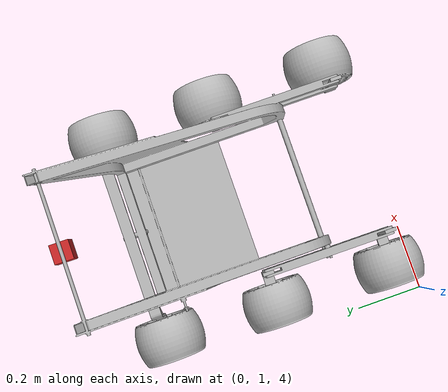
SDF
<?xml version='1.0'?>
<sdf version='1.4'>
  <model name="rmc_robot">
  <static>false</static>
  <pose>0.5 1 4 0 0 3.14</pose>
  <link name='base_link'>
      <pose>0 0 0 0 0 0</pose>
      <inertial>
        <pose>0.0718949 -0.601542 0.318448 0 -0 0</pose>
        <mass>2.92938</mass>
        <inertia>
          <ixx>0.148284</ixx>
          <ixy>7.06981e-05</ixy>
          <ixz>-1.16351e-05</ixz>
          <iyy>0.131066</iyy>
          <iyz>-0.0298493</iyz>
          <izz>0.188823</izz>
        </inertia>
      </inertial>
      <collision name='base_link_collision'>
        <pose>0 0 0 0 -0 0</pose>
        <geometry>
          <mesh>
            <scale>1 1 1</scale>
            <uri>model://rmc_simulation/meshes/base_link.STL</uri>
          </mesh>
        </geometry>
      </collision>
      <visual name='base_link_visual'>
        <pose>0 0 0 0 -0 0</pose>
        <geometry>
          <mesh>
            <scale>1 1 1</scale>
            <uri>model://rmc_simulation/meshes/base_link.STL</uri>
          </mesh>
        </geometry>
      </visual>
      <velocity_decay>
        <linear>0</linear>
        <angular>0</angular>
      </velocity_decay>
    </link>

    <link name='left_bot_link'>
      <pose>-0.140869 -0.255808 0.217656 1.5708 -0 0</pose>
      <inertial>
        <pose>-0.0111125 -2.77556e-17 0 0 -0 0</pose>
        <mass>0.188515</mass>
        <inertia>
          <ixx>0.0019175</ixx>
          <ixy>4.77528e-22</ixy>
          <ixz>1.41435e-20</ixz>
          <iyy>0.00191594</iyy>
          <iyz>4.20247e-21</iyz>
          <izz>1.85554e-05</izz>
        </inertia>
      </inertial>
      <collision name='left_bot_link_collision'>
        <pose>0 0 0 0 -0 0</pose>
        <geometry>
          <mesh>
            <scale>1 1 1</scale>
            <uri>model://rmc_simulation/meshes/left_bot_link.STL</uri>
          </mesh>
        </geometry>
      </collision>
      <visual name='left_bot_link_visual'>
        <pose>0 0 0 0 -0 0</pose>
        <geometry>
          <mesh>
            <scale>1 1 1</scale>
            <uri>model://rmc_simulation/meshes/left_bot_link.STL</uri>
          </mesh>
        </geometry>
      </visual>
      <velocity_decay>
        <linear>0</linear>
        <angular>0</angular>
      </velocity_decay>
    </link>

    <joint name='left_bot_joint' type='revolute'>
      <child>left_bot_link</child>
      <parent>base_link</parent>
      <axis>
        <xyz>-1 0 0</xyz>
        <limit>
          <lower>-1e+16</lower>
          <upper>1e+16</upper>
        </limit>
      </axis>
    </joint>

    <link name='left_bot_back_link'>
      <pose>-0.163094 -0.433608 0.217656 1.5708 -3.44169e-15 1.5708</pose>
      <inertial>
        <pose>1.92853e-05 -0.0863283 -0.0548204 0 -0 0</pose>
        <mass>0.205852</mass>
        <inertia>
          <ixx>0.00120413</ixx>
          <ixy>-1.40154e-07</ixy>
          <ixz>-1.2706e-07</ixz>
          <iyy>0.000482538</iyy>
          <iyz>0.000461297</iyz>
          <izz>0.000755248</izz>
        </inertia>
      </inertial>
      <collision name='left_bot_back_link_collision'>
        <pose>0 0 0 0 -0 0</pose>
        <geometry>
          <mesh>
            <scale>1 1 1</scale>
            <uri>model://rmc_simulation/meshes/left_bot_back_link.STL</uri>
          </mesh>
        </geometry>
      </collision>
      <visual name='left_bot_back_link_visual'>
        <pose>0 0 0 0 -0 0</pose>
        <geometry>
          <mesh>
            <scale>1 1 1</scale>
            <uri>model://rmc_simulation/meshes/left_bot_back_link.STL</uri>
          </mesh>
        </geometry>
      </visual>
      <velocity_decay>
        <linear>0</linear>
        <angular>0</angular>
      </velocity_decay>
    </link>

    <joint name='left_bot_back_joint' type='revolute'>
      <child>left_bot_back_link</child>
      <parent>left_bot_link</parent>
      <axis>
        <xyz>-1 -3.44169e-15 1.11022e-16</xyz>
        <limit>
          <lower>-1e+16</lower>
          <upper>1e+16</upper>
        </limit>
      </axis>
    </joint>

<link name='left_mid_wheel_link'>
      <pose>-0.179282 -0.433574 0.077831 0.785403 1.57079 -0.785403</pose>
      <inertial>
        <pose>-7.307e-12 -0.0707952 -1.95886e-07 0 -0 0</pose>
        <mass>0.687646</mass>
        <inertia>
          <ixx>0.00410397</ixx>
          <ixy>1.97154e-13</ixy>
          <ixz>1.06916e-14</ixz>
          <iyy>0.00552463</iyy>
          <iyz>5.39169e-09</iyz>
          <izz>0.00410397</izz>
        </inertia>
      </inertial>
      <collision name='left_mid_wheel_link_collision'>
        <pose>0 0 0 0 -0 0</pose>
        <geometry>
          <mesh>
            <scale>1 1 1</scale>
            <uri>model://rmc_simulation/meshes/left_mid_wheel_link.STL</uri>
          </mesh>
        </geometry>
      </collision>
      <visual name='left_mid_wheel_link_visual'>
        <pose>0 0 0 0 -0 0</pose>
        <geometry>
          <mesh>
            <scale>1 1 1</scale>
            <uri>model://rmc_simulation/meshes/left_mid_wheel_link.STL</uri>
          </mesh>
        </geometry>
      </visual>
      <velocity_decay>
        <linear>0</linear>
        <angular>0</angular>
      </velocity_decay>
    </link>
    <joint name='left_mid_wheel_joint' type='revolute'>
      <child>left_mid_wheel_link</child>
      <parent>left_bot_back_link</parent>
      <axis>
        <xyz>-1 -1.11022e-16 1.11022e-16</xyz>
        <limit>
          <lower>-1e+16</lower>
          <upper>1e+16</upper>
        </limit>
      </axis>
    </joint>

    <link name='left_bot_front_link'>
      <pose>-0.147219 -0.0780078 0.217656 1.5708 -3.44169e-15 1.5708</pose>
      <inertial>
        <pose>1.92853e-05 -0.0863283 -0.0706954 0 -0 0</pose>
        <mass>0.205852</mass>
        <inertia>
          <ixx>0.00120413</ixx>
          <ixy>-1.40154e-07</ixy>
          <ixz>-1.2706e-07</ixz>
          <iyy>0.000482538</iyy>
          <iyz>0.000461297</iyz>
          <izz>0.000755248</izz>
        </inertia>
      </inertial>
      <collision name='left_bot_front_link_collision'>
        <pose>0 0 0 0 -0 0</pose>
        <geometry>
          <mesh>
            <scale>1 1 1</scale>
            <uri>model://rmc_simulation/meshes/left_bot_front_link.STL</uri>
          </mesh>
        </geometry>
      </collision>
      <visual name='left_bot_front_link_visual'>
        <pose>0 0 0 0 -0 0</pose>
        <geometry>
          <mesh>
            <scale>1 1 1</scale>
            <uri>model://rmc_simulation/meshes/left_bot_front_link.STL</uri>
          </mesh>
        </geometry>
      </visual>
      <velocity_decay>
        <linear>0</linear>
        <angular>0</angular>
      </velocity_decay>
    </link>
    <joint name='left_bot_front_joiny' type='revolute'>
      <child>left_bot_front_link</child>
      <parent>left_bot_link</parent>
      <axis>
        <xyz>-1 -3.44169e-15 1.11022e-16</xyz>
        <limit>
          <lower>-1e+16</lower>
          <upper>1e+16</upper>
        </limit>
      </axis>
    </joint>

    <link name='left_front_wheel_link'>
      <pose>-0.179282 -0.077974 0.077831 0.785403 1.57079 -0.785403</pose>
      <inertial>
        <pose>-7.30697e-12 -0.0707952 -1.95886e-07 0 -0 0</pose>
        <mass>0.687646</mass>
        <inertia>
          <ixx>0.00410397</ixx>
          <ixy>1.97154e-13</ixy>
          <ixz>1.06921e-14</ixz>
          <iyy>0.00552463</iyy>
          <iyz>5.39169e-09</iyz>
          <izz>0.00410397</izz>
        </inertia>
      </inertial>
      <collision name='left_front_wheel_link_collision'>
        <pose>0 0 0 0 -0 0</pose>
        <geometry>
          <mesh>
            <scale>1 1 1</scale>
            <uri>model://rmc_simulation/meshes/left_front_wheel_link.STL</uri>
          </mesh>
        </geometry>
      </collision>
      <visual name='left_front_wheel_link_visual'>
        <pose>0 0 0 0 -0 0</pose>
        <geometry>
          <mesh>
            <scale>1 1 1</scale>
            <uri>model://rmc_simulation/meshes/left_front_wheel_link.STL</uri>
          </mesh>
        </geometry>
      </visual>
      <velocity_decay>
        <linear>0</linear>
        <angular>0</angular>
      </velocity_decay>
    </link>
    <joint name='left_front_wheel_joint' type='revolute'>
      <child>left_front_wheel_link</child>
      <parent>left_bot_front_link</parent>
      <axis>
        <xyz>-1 -1.11022e-16 1.11022e-16</xyz>
        <limit>
          <lower>-1e+16</lower>
          <upper>1e+16</upper>
        </limit>
      </axis>
    </joint>

    <link name='left_top_link'>
      <pose>-0.140869 -0.255808 0.293856 1.5708 -0 0</pose>
      <inertial>
        <pose>-0.0111125 -5.55112e-17 0 0 -0 0</pose>
        <mass>0.140249</mass>
        <inertia>
          <ixx>0.00137938</ixx>
          <ixy>-1.28023e-22</ixy>
          <ixz>7.25851e-21</ixz>
          <iyy>0.00138148</iyy>
          <iyz>4.32209e-22</iyz>
          <izz>1.05254e-05</izz>
        </inertia>
      </inertial>
      <collision name='left_top_link_collision'>
        <pose>0 0 0 0 -0 0</pose>
        <geometry>
          <mesh>
            <scale>1 1 1</scale>
            <uri>model://rmc_simulation/meshes/left_top_link.STL</uri>
          </mesh>
        </geometry>
      </collision>
      <visual name='left_top_link_visual'>
        <pose>0 0 0 0 -0 0</pose>
        <geometry>
          <mesh>
            <scale>1 1 1</scale>
            <uri>model://rmc_simulation/meshes/left_top_link.STL</uri>
          </mesh>
        </geometry>
      </visual>
      <velocity_decay>
        <linear>0</linear>
        <angular>0</angular>
      </velocity_decay>
    </link>
    <joint name='left_top_joint' type='revolute'>
      <child>left_top_link</child>
      <parent>base_link</parent>
      <axis>
        <xyz>-1 0 0</xyz>
        <limit>
          <lower>-1e+16</lower>
          <upper>1e+16</upper>
        </limit>
      </axis>
    </joint>

    <joint name='left_top_back_joint' type='revolute'>
       <child>left_bot_back_link</child>
       <parent>left_top_link</parent>
       <pose>0 0.0762 0 0 0 0</pose>
       <axis>
         <xyz>-1 0 0</xyz>
         <limit>
           <lower>-1e+16</lower>
           <upper>1e+16</upper>
         </limit>
       </axis>
    </joint>

    <joint name='left_top_front_joint' type='revolute'>
       <child>left_bot_front_link</child>
       <parent>left_top_link</parent>
       <pose> 0 0.0762 0 0 0 0 </pose>
       <axis>
         <xyz>-1 0 0</xyz>
         <limit>
           <lower>-1e+16</lower>
           <upper>1e+16</upper>
         </limit>
       </axis>
    </joint>

<!-- END OF LEFT ROCKER OMFG YESSSSSSSS -->

    <link name='rear_rocker_link'>
      <pose>0.0718557 -0.753477 0.217656 1.5708 0.0049569 4.33686e-19</pose>
      <inertial>
        <pose>0.000471477 -0.0411046 0.0167425 0 -0 0</pose>
        <mass>0.807447</mass>
        <inertia>
          <ixx>0.00288386</ixx>
          <ixy>-1.8321e-05</ixy>
          <ixz>-8.95563e-08</ixz>
          <iyy>0.0397756</iyy>
          <iyz>3.03268e-06</iyz>
          <izz>0.0425282</izz>
        </inertia>
      </inertial>
      <collision name='rear_rocker_link_collision'>
        <pose>0 0 0 0 -0 0</pose>
        <geometry>
          <mesh>
            <scale>1 1 1</scale>
            <uri>model://rmc_simulation/meshes/rear_rocker_link.STL</uri>
          </mesh>
        </geometry>
      </collision>
      <visual name='rear_rocker_link_visual'>
        <pose>0 0 0 0 -0 0</pose>
        <geometry>
          <mesh>
            <scale>1 1 1</scale>
            <uri>model://rmc_simulation/meshes/rear_rocker_link.STL</uri>
          </mesh>
        </geometry>
      </visual>
      <velocity_decay>
        <linear>0</linear>
        <angular>0</angular>
      </velocity_decay>
    </link>
    <joint name='rear_rocker_joint' type='revolute'>
      <child>rear_rocker_link</child>
      <parent>base_link</parent>
      <axis>
        <xyz>1.73472e-17 1 3.44167e-15</xyz>
        <limit>
          <lower>-1e+16</lower>
          <upper>1e+16</upper>
        </limit>
      </axis>
    </joint>
<!-- END OF REAR ROCKER -->

    <link name='left_back_wheel_link'>
      <pose>-0.180876 -0.770124 0.0791455 -1.5708 1.56584 3.14159</pose>
      <inertial>
        <pose>-7.71942e-12 -0.070792 -1.95887e-07 0 -0 0</pose>
        <mass>0.687646</mass>
        <inertia>
          <ixx>0.00410397</ixx>
          <ixy>2.09611e-13</ixy>
          <ixz>1.05878e-14</ixz>
          <iyy>0.00552463</iyy>
          <iyz>5.39171e-09</iyz>
          <izz>0.00410397</izz>
        </inertia>
      </inertial>
      <collision name='left_back_wheel_link_collision'>
        <pose>0 0 0 0 -0 0</pose>
        <geometry>
          <mesh>
            <scale>1 1 1</scale>
            <uri>model://rmc_simulation/meshes/left_back_wheel_link.STL</uri>
          </mesh>
        </geometry>
      </collision>
      <visual name='left_back_wheel_link_visual'>
        <pose>0 0 0 0 -0 0</pose>
        <geometry>
          <mesh>
            <scale>1 1 1</scale>
            <uri>model://rmc_simulation/meshes/left_back_wheel_link.STL</uri>
          </mesh>
        </geometry>
      </visual>
      <velocity_decay>
        <linear>0</linear>
        <angular>0</angular>
      </velocity_decay>
    </link>
    <joint name='left_back_wheel_joint' type='revolute'>
      <child>left_back_wheel_link</child>
      <parent>rear_rocker_link</parent>
      <axis>
        <xyz>-0.999988 -1.11022e-16 0.00495688</xyz>
        <limit>
          <lower>-1e+16</lower>
          <upper>1e+16</upper>
        </limit>
      </axis>
    </joint>

    <link name='right_back_wheel_link'>
      <pose>0.323202 -0.770124 0.0766469 3.13028 -1.11702 -1.56063</pose>
      <inertial>
        <pose>-2.56872e-12 -0.070792 -1.95886e-07 0 -0 0</pose>
        <mass>0.687646</mass>
        <inertia>
          <ixx>0.00410397</ixx>
          <ixy>7.41436e-14</ixy>
          <ixz>7.32563e-15</ixz>
          <iyy>0.00552463</iyy>
          <iyz>5.3917e-09</iyz>
          <izz>0.00410397</izz>
        </inertia>
      </inertial>
      <collision name='right_back_wheel_link_collision'>
        <pose>0 0 0 0 -0 0</pose>
        <geometry>
          <mesh>
            <scale>1 1 1</scale>
            <uri>model://rmc_simulation/meshes/right_back_wheel_link.STL</uri>
          </mesh>
        </geometry>
      </collision>
      <visual name='right_back_wheel_link_visual'>
        <pose>0 0 0 0 -0 0</pose>
        <geometry>
          <mesh>
            <scale>1 1 1</scale>
            <uri>model://rmc_simulation/meshes/right_back_wheel_link.STL</uri>
          </mesh>
        </geometry>
      </visual>
      <velocity_decay>
        <linear>0</linear>
        <angular>0</angular>
      </velocity_decay>
    </link>
    <joint name='right_back_wheel_joint' type='revolute'>
      <child>right_back_wheel_link</child>
      <parent>rear_rocker_link</parent>
      <axis>
        <xyz>-0.999988 -2.77556e-17 0.00495688</xyz>
        <limit>
          <lower>-1e+16</lower>
          <upper>1e+16</upper>
        </limit>
      </axis>
    </joint>

    <link name='right_bot_link'>
      <pose>0.284581 -0.255808 0.217656 1.5708 -0 0</pose>
      <inertial>
        <pose>0.0111125 2.77556e-17 0 0 -0 0</pose>
        <mass>0.188515</mass>
        <inertia>
          <ixx>0.0019175</ixx>
          <ixy>-7.07169e-22</ixy>
          <ixz>-9.82756e-21</ixz>
          <iyy>0.00191594</iyy>
          <iyz>-2.59046e-07</iyz>
          <izz>1.85554e-05</izz>
        </inertia>
      </inertial>
      <collision name='right_bot_link_collision'>
        <pose>0 0 0 0 -0 0</pose>
        <geometry>
          <mesh>
            <scale>1 1 1</scale>
            <uri>model://rmc_simulation/meshes/right_bot_link.STL</uri>
          </mesh>
        </geometry>
      </collision>
      <visual name='right_bot_link_visual'>
        <pose>0 0 0 0 -0 0</pose>
        <geometry>
          <mesh>
            <scale>1 1 1</scale>
            <uri>model://rmc_simulation/meshes/right_bot_link.STL</uri>
          </mesh>
        </geometry>
      </visual>
      <velocity_decay>
        <linear>0</linear>
        <angular>0</angular>
      </velocity_decay>
    </link>
    <joint name='right_bot_joint' type='revolute'>
      <child>right_bot_link</child>
      <parent>base_link</parent>
      <axis>
        <xyz>-1 0 0</xyz>
        <limit>
          <lower>-1e+16</lower>
          <upper>1e+16</upper>
        </limit>
      </axis>
    </joint>
<!-- negate the roll value. swithc the angle. check right mid wheel -->
    <link name='right_bot_back_link'>
      <pose>0.290931 -0.433608 0.207632 -1.5708 3.44169e-15 -1.5708</pose>
      <inertial>
        <pose>1.92853e-05 0.0763283 0.0706954 0 -0 0</pose>
        <mass>0.205852</mass>
        <inertia>
          <ixx>0.00120413</ixx>
          <ixy>1.40154e-07</ixy>
          <ixz>1.2706e-07</ixz>
          <iyy>0.000482538</iyy>
          <iyz>0.000461297</iyz>
          <izz>0.000755248</izz>
        </inertia>
      </inertial>
      <collision name='right_bot_back_link_collision'>
        <pose>0 0 0 0 -0 0</pose>
        <geometry>
          <mesh>
            <scale>1 1 1</scale>
            <uri>model://rmc_simulation/meshes/right_bot_back_link.STL</uri>
          </mesh>
        </geometry>
      </collision>
      <visual name='right_bot_back_link_visual'>
        <pose>0 0 0 0 -0 0</pose>
        <geometry>
          <mesh>
            <scale>1 1 1</scale>
            <uri>model://rmc_simulation/meshes/right_bot_back_link.STL</uri>
          </mesh>
        </geometry>
      </visual>
      <velocity_decay>
        <linear>0</linear>
        <angular>0</angular>
      </velocity_decay>
    </link>
    <joint name='right_bot_back_joint' type='revolute'>
      <child>right_bot_back_link</child>
      <parent>right_bot_link</parent>
      <axis>
        <xyz>-1 -3.44169e-15 1.11022e-16</xyz>
        <limit>
          <lower>-1e+16</lower>
          <upper>1e+16</upper>
        </limit>
      </axis>
    </joint>

    <link name='right_mid_wheel_link'>
      <pose>0.323202 -0.433642 0.0766469 -2.65358e-06 1.57079 1.57079</pose>
      <inertial>
        <pose>-7.30706e-12 -0.0807952 -1.95886e-07 0 -0 0</pose>
        <mass>0.687646</mass>
        <inertia>
          <ixx>0.00410397</ixx>
          <ixy>1.97149e-13</ixy>
          <ixz>1.06927e-14</ixz>
          <iyy>0.00552463</iyy>
          <iyz>5.39169e-09</iyz>
          <izz>0.00410397</izz>
        </inertia>
      </inertial>
      <collision name='right_mid_wheel_link_collision'>
        <pose>0 0 0 0 -0 0</pose>
        <geometry>
          <mesh>
            <scale>1 1 1</scale>
            <uri>model://rmc_simulation/meshes/right_mid_wheel_link.STL</uri>
          </mesh>
        </geometry>
      </collision>
      <visual name='right_mid_wheel_link_visual'>
        <pose>0 0 0 0 -0 0</pose>
        <geometry>
          <mesh>
            <scale>1 1 1</scale>
            <uri>model://rmc_simulation/meshes/right_mid_wheel_link.STL</uri>
          </mesh>
        </geometry>
      </visual>
      <velocity_decay>
        <linear>0</linear>
        <angular>0</angular>
      </velocity_decay>
    </link>
    <joint name='right_mid_wheel_joint' type='revolute'>
      <child>right_mid_wheel_link</child>
      <parent>right_bot_back_link</parent>
      <axis>
        <xyz>-1 0 0</xyz>
        <limit>
          <lower>-1e+16</lower>
          <upper>1e+16</upper>
        </limit>
      </axis>
    </joint>

<!-- Had to negate the roll angle value to make it turn around. Check the right front wheel -->
    <link name='right_bot_front_link'>
      <pose>0.290931 -0.0780078 0.217656 -1.5708 3.44169e-15 -1.5708</pose>
      <inertial>
        <pose>-4.78511e-05 0.0863041 0.0706954 0 -0 0</pose>
        <mass>0.205852</mass>
        <inertia>
          <ixx>0.00120413</ixx>
          <ixy>-4.2103e-07</ixy>
          <ixz>-2.31693e-07</ixz>
          <iyy>0.000482538</iyy>
          <iyz>0.000461297</iyz>
          <izz>0.000755248</izz>
        </inertia>
      </inertial>
      <collision name='right_bot_front_link_collision'>
        <pose>0 0 0 0 -0 0</pose>
        <geometry>
          <mesh>
            <scale>1 1 1</scale>
            <uri>model://rmc_simulation/meshes/right_bot_front_link.STL</uri>
          </mesh>
        </geometry>
      </collision>
      <visual name='right_bot_front_link_visual'>
        <pose>0 0 0 0 -0 0</pose>
        <geometry>
          <mesh>
            <scale>1 1 1</scale>
            <uri>model://rmc_simulation/meshes/right_bot_front_link.STL</uri>
          </mesh>
        </geometry>
      </visual>
      <velocity_decay>
        <linear>0</linear>
        <angular>0</angular>
      </velocity_decay>
    </link>
    <joint name='right_bot_front_joint' type='revolute'>
      <child>right_bot_front_link</child>
      <parent>right_bot_link</parent>
      <axis>
        <xyz>-1 -3.44169e-15 1.11022e-16</xyz>
        <limit>
          <lower>-1e+16</lower>
          <upper>1e+16</upper>
        </limit>
      </axis>
    </joint>

    <link name='right_front_wheel_link'>
      <pose>0.323202 -0.0779328 0.0766469 -5.12491e-14 1.56863 1.5708</pose>
      <inertial>
        <pose>-7.19148e-12 -0.0807952 -1.95886e-07 0 -0 0</pose>
        <mass>0.687646</mass>
        <inertia>
          <ixx>0.00410397</ixx>
          <ixy>1.94069e-13</ixy>
          <ixz>1.05931e-14</ixz>
          <iyy>0.00552463</iyy>
          <iyz>5.39169e-09</iyz>
          <izz>0.00410397</izz>
        </inertia>
      </inertial>
      <collision name='right_front_wheel_link_collision'>
        <pose>0 0 0 0 -0 0</pose>
        <geometry>
          <mesh>
            <scale>1 1 1</scale>
            <uri>model://rmc_simulation/meshes/right_front_wheel_link.STL</uri>
          </mesh>
        </geometry>
      </collision>
      <visual name='right_front_wheel_link_visual'>
        <pose>0 0 0 0 -0 0</pose>
        <geometry>
          <mesh>
            <scale>1 1 1</scale>
            <uri>model://rmc_simulation/meshes/right_front_wheel_link.STL</uri>
          </mesh>
        </geometry>
      </visual>
      <velocity_decay>
        <linear>0</linear>
        <angular>0</angular>
      </velocity_decay>
    </link>
    <joint name='right_front_wheel_joint' type='revolute'>
      <child>right_front_wheel_link</child>
      <parent>right_bot_front_link</parent>
      <axis>
        <xyz>-1 -5.55112e-17 5.55112e-17</xyz>
        <limit>
          <lower>-1e+16</lower>
          <upper>1e+16</upper>
        </limit>
      </axis>
    </joint>

    <link name='right_top_link'>
      <pose>0.284581 -0.255808 0.293856 1.5708 -0 0</pose>
      <inertial>
        <pose>0.0111125 0 -5.55112e-17 0 -0 0</pose>
        <mass>0.140249</mass>
        <inertia>
          <ixx>0.00137938</ixx>
          <ixy>-1.37422e-22</ixy>
          <ixz>-1.023e-20</ixz>
          <iyy>0.00138148</iyy>
          <iyz>2.95551e-21</iyz>
          <izz>1.05254e-05</izz>
        </inertia>
      </inertial>
      <collision name='right_top_link_collision'>
        <pose>0 0 0 0 -0 0</pose>
        <geometry>
          <mesh>
            <scale>1 1 1</scale>
            <uri>model://rmc_simulation/meshes/right_top_link.STL</uri>
          </mesh>
        </geometry>
      </collision>
      <visual name='right_top_link_visual'>
        <pose>0 0 0 0 -0 0</pose>
        <geometry>
          <mesh>
            <scale>1 1 1</scale>
            <uri>model://rmc_simulation/meshes/right_top_link.STL</uri>
          </mesh>
        </geometry>
      </visual>
      <velocity_decay>
        <linear>0</linear>
        <angular>0</angular>
      </velocity_decay>
    </link>
    <joint name='right_top_joint' type='revolute'>
      <child>right_top_link</child>
      <parent>base_link</parent>
      <axis>
        <xyz>-1 0 0</xyz>
        <limit>
          <lower>-1e+16</lower>
          <upper>1e+16</upper>
        </limit>
      </axis>
    </joint>

    <joint name='right_top_back_joint' type='revolute'>
      <child>right_bot_back_link</child>
      <parent>right_top_link</parent>
      <pose>0 -0.087 0 0 0 0 </pose>
      <axis>
        <xyz>-1 -3.44169e-15 1.11022e-16</xyz>
        <limit>
          <lower>-1e+16</lower>
          <upper>1e+16</upper>
        </limit>
      </axis>
    </joint>

<joint name='right_top_front_joint' type='revolute'>
      <child>right_bot_front_link</child>
      <parent>right_top_link</parent>
      <pose>0 -0.087 0 0 0 0 </pose>
      <axis>
        <xyz>-1 -3.44169e-15 1.11022e-16</xyz>
        <limit>
          <lower>-1e+16</lower>
          <upper>1e+16</upper>
        </limit>
      </axis>
    </joint>

    <plugin name="hector_6w_diff_controller" filename="libdiffdrive_plugin_6w.so">
            <alwaysOn>1</alwaysOn>
            <updateRate>10.0</updateRate>
            <wheelSeparation>0.5116</wheelSeparation>
            <wheelDiameter>0.2191</wheelDiameter>
            <torque>35</torque>
	    <frontLeftJoint>left_front_wheel_joint</frontLeftJoint>
            <frontRightJoint>right_front_wheel_joint</frontRightJoint>
            <midLeftJoint>left_mid_wheel_joint</midLeftJoint>
            <midRightJoint>right_mid_wheel_joint</midRightJoint>
            <rearLeftJoint>left_back_wheel_joint</rearLeftJoint>
            <rearRightJoint>right_back_wheel_joint</rearRightJoint>
    </plugin>

    <joint name="blackfly_mount_joint" type="revolute">
      <parent>base_link</parent>
      <child>blackfly_mount_link</child>
      <pose>0 0 0 0 0 0</pose>
      <axis>
        <xyz>-1 0 0</xyz>
        <limit>
          <lower>0</lower>
          <upper>0</upper>
        </limit>
      </axis>
    </joint>

    <link name='blackfly_mount_link'>
      <pose>0.0718557 -0.90 0.525 0 0 -1.57</pose>
      <inertial>
        <mass>1e-5</mass>
        <inertia>
          <ixx>1e-6</ixx>
          <ixy>0</ixy>
          <ixz>0</ixz>
          <iyy>1e-6</iyy>
          <iyz>0.0</iyz>
          <izz>1e-6</izz>
        </inertia>
      </inertial>
      <collision name='blackfly_mount_link_collision'>
        <pose>0 0 0 0 0 0</pose>
        <geometry>
           <box>
             <size> 0.05 0.05 0.05 </size>
           </box>
        </geometry>
      </collision>
      <visual name='blackfly_mount_link_visual'>
        <pose>0 0 0 0 0 0</pose>
        <geometry>
           <box>
             <size> 0.05 0.05 0.05 </size>
           </box>
        </geometry>
        <material>
          <script>
            <uri>file://media/materials/scripts/gazebo.material</uri>
            <name>Gazebo/Red</name>
          </script>
        </material>
      </visual>
      <gravity>1</gravity>
      <velocity_decay>
         <linear>0</linear>
         <angular>0</angular>
      </velocity_decay>
      <self_collide>0</self_collide>

    <sensor name='blackfly_camera' type='camera'>
      <update_rate>20</update_rate>
      <camera name="head">
        <horizontal_fov>2.09</horizontal_fov>
        <image>
          <width>1280</width>
          <height>960</height>
          <format>R8G8B8</format>
        </image>
        <clip>
          <near>0.02</near>
          <far>300</far>
        </clip>
        <noise>
          <type>gaussian</type>
          <mean>0.0</mean>
          <stddev>0.007</stddev>
         </noise>
        </camera>
        <pose>0 0 0 0 0 0</pose>
        <plugin name="camera_controller" filename="libgazebo_ros_camera.so">
          <alwaysOn>true</alwaysOn>
          <updateRate>0.0</updateRate>
          <cameraName>camera1</cameraName>
          <imageTopicName>image_raw</imageTopicName>
          <cameraInfoTopicName>camera_info</cameraInfoTopicName>
          <frameName>blackfly_mount_link</frameName>
          <hackBaseline>0.07</hackBaseline>
          <distortionK1>0.0</distortionK1>
          <distortionK2>0.0</distortionK2>
          <distortionK3>0.0</distortionK3>
          <distortionT1>0.0</distortionT1>
          <distortionT2>0.0</distortionT2>
        </plugin>
    </sensor>
   </link>

      <link name='imu_link'>
      <pose>0.0718557 -0.433574 0.217656 0 0 0</pose>
         <inertial>
            <pose>0 0 0 0 0 0</pose>
            <mass>0.001</mass>
            <inertia>
                <ixx>1e-09</ixx>
                <ixy>0</ixy>
                <ixz>0</ixz>
                <iyy>1e-09</iyy>
                <iyz>0</iyz>
                <izz>1e-09</izz>
            </inertia>
          </inertial>
      </link>
      <joint name='imu_joint' type='revolute'>
          <child>imu_link</child>
          <parent>base_link</parent>
          <axis>
              <xyz>0 0 1</xyz>
              <limit>
                 <lower>0</lower>
                 <upper>0</upper>
              </limit>
          </axis>
      </joint>

        <plugin name="imu_controller" filename="libhector_gazebo_ros_imu.so">
                <robotNamespace>/</robotNamespace>
                <updateRate>50.0</updateRate>
                <bodyName>base_link</bodyName>
                <topicName>imu/data</topicName>
                <accelDrift>0.00 0.00 0.00</accelDrift>
                <accelGaussianNoise>0.00 0.00 0.00</accelGaussianNoise>
                <rateDrift>0.00 0.00 0.00</rateDrift>
                <rateGaussianNoise>0.00 0.00 0.00 </rateGaussianNoise>
                <headingDrift>0.00</headingDrift>
                <headingGaussianNoise>0.00</headingGaussianNoise>
        </plugin>
  </model>
</sdf>
